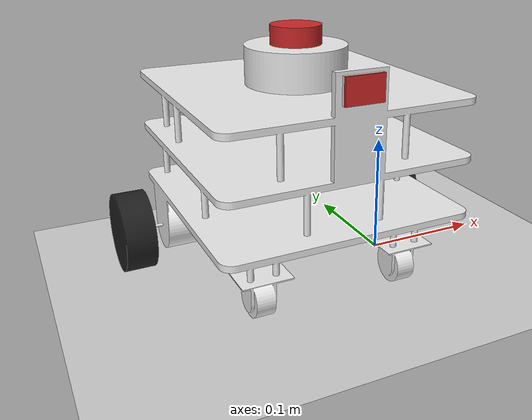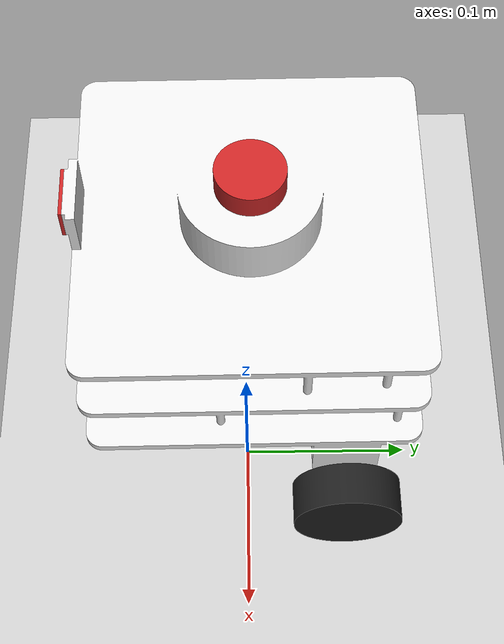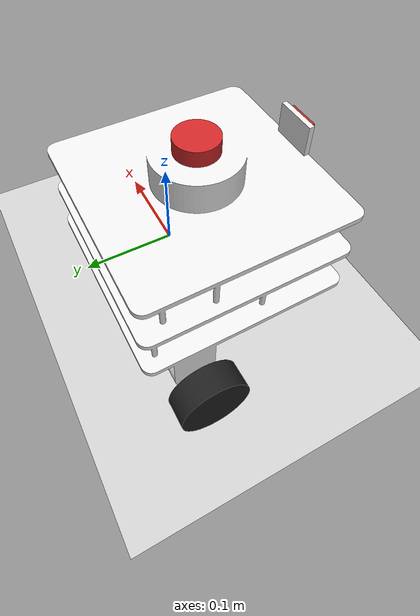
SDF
<sdf version="1.7">
 <world name="default">
  <light name="sun" type="directional">
   <pose>0 0 10 0 -0 0</pose>
   <diffuse>0.8 0.8 0.8 1</diffuse>
   <specular>0.2 0.2 0.2 1</specular>
   <attenuation>
    <range>1000</range>
    <constant>0.9</constant>
    <linear>0.01</linear>
    <quadratic>0.001</quadratic>
   </attenuation>
   <direction>-0.5 0.1 -0.9</direction>
   <spot><inner_angle>0</inner_angle><outer_angle>0</outer_angle><falloff>0</falloff></spot>
  </light>
  <model name="ground_plane">
   <static>1</static>
   <link name="link">
    <collision name="collision">
     <geometry><plane><normal>0 0 1</normal><size>100 100</size></plane></geometry>
     <surface><friction><ode><mu>100</mu><mu2>50</mu2></ode></friction></surface>
    </collision>
    <visual name="visual">
     <cast_shadows>0</cast_shadows>
     <geometry><plane><normal>0 0 1</normal><size>100 100</size></plane></geometry>
     <material>
      <script><uri>file://media/materials/scripts/gazebo.material</uri><name>Gazebo/Grey</name></script>
     </material>
    </visual>
   </link>
  </model>
  <gravity>0 0 -9.8</gravity>
  <magnetic_field>6e-06 2.3e-05 -4.2e-05</magnetic_field>
  <atmosphere type="adiabatic"/>
  <physics type="ode">
   <max_step_size>0.001</max_step_size>
   <real_time_factor>1</real_time_factor>
   <real_time_update_rate>1000</real_time_update_rate>
  </physics>
  <scene><ambient>0.4 0.4 0.4 1</ambient><background>0.7 0.7 0.7 1</background><shadows>1</shadows></scene>
  <audio><device>default</device></audio>
  <spherical_coordinates>
   <surface_model>EARTH_WGS84</surface_model>
   <latitude_deg>0</latitude_deg>
   <longitude_deg>0</longitude_deg>
   <elevation>0</elevation>
   <heading_deg>0</heading_deg>
  </spherical_coordinates>
  <model name="my_bot">
   <link name="base_footprint">
    <inertial>
     <pose>-0.005983 0 0.105396 0 -0 0</pose>
     <mass>1.07769</mass>
     <inertia>
      <ixx>0.0064204</ixx>
      <ixy>7.30532e-19</ixy>
      <ixz>-0.000660268</ixz>
      <iyy>0.00626222</iyy>
      <iyz>5.33215e-18</iyz>
      <izz>0.00633694</izz>
     </inertia>
    </inertial>
    <collision name="base_footprint_fixed_joint_lump__base_link_collision">
     <geometry>
      <mesh>
       <scale>0.001 0.001 0.001</scale>
       <uri>file:///home/vedh/workspaces/bbot_ws/install/bbot_description/share/bbot_description/meshes/base_link.stl</uri>
      </mesh>
     </geometry>
     <surface><friction><ode><mu>0.2</mu><mu2>0.2</mu2></ode></friction></surface>
    </collision>
    <collision name="base_footprint_fixed_joint_lump__camera_collision_1">
     <geometry>
      <mesh>
       <scale>0.001 0.001 0.001</scale>
       <uri>file:///home/vedh/workspaces/bbot_ws/install/bbot_description/share/bbot_description/meshes/camera_1.stl</uri>
      </mesh>
     </geometry>
    </collision>
    <collision name="base_footprint_fixed_joint_lump__lidar_collision_2">
     <geometry>
      <mesh>
       <scale>0.001 0.001 0.001</scale>
       <uri>file:///home/vedh/workspaces/bbot_ws/install/bbot_description/share/bbot_description/meshes/lidar_1.stl</uri>
      </mesh>
     </geometry>
    </collision>
    <visual name="base_footprint_fixed_joint_lump__base_link_visual">
     <geometry>
      <mesh>
       <scale>0.001 0.001 0.001</scale>
       <uri>file:///home/vedh/workspaces/bbot_ws/install/bbot_description/share/bbot_description/meshes/base_link.stl</uri>
      </mesh>
     </geometry>
     <material>
      <script><name>Gazebo/White</name><uri>file://media/materials/scripts/gazebo.material</uri></script>
     </material>
    </visual>
    <visual name="base_footprint_fixed_joint_lump__camera_visual_1">
     <geometry>
      <mesh>
       <scale>0.001 0.001 0.001</scale>
       <uri>file:///home/vedh/workspaces/bbot_ws/install/bbot_description/share/bbot_description/meshes/camera_1.stl</uri>
      </mesh>
     </geometry>
     <material>
      <script><name>Gazebo/Red</name><uri>file://media/materials/scripts/gazebo.material</uri></script>
     </material>
    </visual>
    <visual name="base_footprint_fixed_joint_lump__lidar_visual_2">
     <geometry>
      <mesh>
       <scale>0.001 0.001 0.001</scale>
       <uri>file:///home/vedh/workspaces/bbot_ws/install/bbot_description/share/bbot_description/meshes/lidar_1.stl</uri>
      </mesh>
     </geometry>
     <material>
      <script><name>Gazebo/Red</name><uri>file://media/materials/scripts/gazebo.material</uri></script>
     </material>
    </visual>
    <self_collide>1</self_collide>
    <sensor name="camera" type="camera">
     <visualize>1</visualize>
     <update_rate>10</update_rate>
     <camera>
      <horizontal_fov>1.089</horizontal_fov>
      <image><format>R8G8B8</format><width>640</width><height>480</height></image>
      <clip><near>0.05</near><far>8</far></clip>
     </camera>
     <plugin name="camera_controller" filename="libgazebo_ros_camera.so">
      <frame_name>camera_link_optical</frame_name>
     </plugin>
     <pose>0.1025 0 0.175 0 -0 0</pose>
    </sensor>
    <sensor name="laser" type="ray">
     <visualize>1</visualize>
     <update_rate>10</update_rate>
     <ray>
      <scan>
       <horizontal>
        <samples>360</samples>
        <min_angle>-3.14</min_angle>
        <max_angle>3.14</max_angle>
        <resolution>1</resolution>
       </horizontal>
       <vertical><samples>1</samples><min_angle>0</min_angle><max_angle>0</max_angle></vertical>
      </scan>
      <range><min>0.3</min><max>12</max></range>
     </ray>
     <plugin name="laser_controller" filename="libgazebo_ros_ray_sensor.so">
      <ros><argument>~/out:=scan</argument></ros>
      <output_type>sensor_msgs/LaserScan</output_type>
      <frame_name>lidar</frame_name>
     </plugin>
     <pose>0 0 0.1875 0 -0 0</pose>
    </sensor>
   </link>
   <joint name="base_leftwheel_joint" type="revolute">
    <pose relative_to="base_footprint">-0.055 0.1125 0.0325 0 -0 0</pose>
    <parent>base_footprint</parent>
    <child>leftwheel</child>
    <axis>
     <xyz>0 -1 0</xyz>
     <limit><lower>-1e+16</lower><upper>1e+16</upper></limit>
     <dynamics><spring_reference>0</spring_reference><spring_stiffness>0</spring_stiffness></dynamics>
    </axis>
   </joint>
   <link name="leftwheel">
    <pose relative_to="base_leftwheel_joint">0 0 0 0 -0 0</pose>
    <inertial>
     <pose>-0 0.0125 0 0 -0 0</pose>
     <mass>0.118215</mass>
     <inertia><ixx>3.7e-05</ixx><ixy>0</ixy><ixz>0</ixz><iyy>6.2e-05</iyy><iyz>0</iyz><izz>3.7e-05</izz></inertia>
    </inertial>
    <collision name="leftwheel_collision">
     <pose>0.055 -0.1125 -0.0325 0 -0 0</pose>
     <geometry>
      <mesh>
       <scale>0.001 0.001 0.001</scale>
       <uri>file:///home/vedh/workspaces/bbot_ws/install/bbot_description/share/bbot_description/meshes/leftwheel_1.stl</uri>
      </mesh>
     </geometry>
     <surface><friction><ode><mu>0.2</mu><mu2>0.2</mu2></ode></friction></surface>
    </collision>
    <visual name="leftwheel_visual">
     <pose>0.055 -0.1125 -0.0325 0 -0 0</pose>
     <geometry>
      <mesh>
       <scale>0.001 0.001 0.001</scale>
       <uri>file:///home/vedh/workspaces/bbot_ws/install/bbot_description/share/bbot_description/meshes/leftwheel_1.stl</uri>
      </mesh>
     </geometry>
     <material>
      <script><name>Gazebo/Black</name><uri>file://media/materials/scripts/gazebo.material</uri></script>
     </material>
    </visual>
    <self_collide>1</self_collide>
   </link>
   <joint name="base_rightwheel_joint" type="revolute">
    <pose relative_to="base_footprint">-0.055 -0.1125 0.0325 0 -0 0</pose>
    <parent>base_footprint</parent>
    <child>rigthwheel</child>
    <axis>
     <xyz>0 -1 0</xyz>
     <limit><lower>-1e+16</lower><upper>1e+16</upper></limit>
     <dynamics><spring_reference>0</spring_reference><spring_stiffness>0</spring_stiffness></dynamics>
    </axis>
   </joint>
   <link name="rigthwheel">
    <pose relative_to="base_rightwheel_joint">0 0 0 0 -0 0</pose>
    <inertial>
     <pose>-0 -0.0125 0 0 -0 0</pose>
     <mass>0.118215</mass>
     <inertia><ixx>3.7e-05</ixx><ixy>0</ixy><ixz>0</ixz><iyy>6.2e-05</iyy><iyz>0</iyz><izz>3.7e-05</izz></inertia>
    </inertial>
    <collision name="rigthwheel_collision">
     <pose>0.055 0.1125 -0.0325 0 -0 0</pose>
     <geometry>
      <mesh>
       <scale>0.001 0.001 0.001</scale>
       <uri>file:///home/vedh/workspaces/bbot_ws/install/bbot_description/share/bbot_description/meshes/rigthwheel_1.stl</uri>
      </mesh>
     </geometry>
     <surface><friction><ode><mu>0.2</mu><mu2>0.2</mu2></ode></friction></surface>
    </collision>
    <visual name="rigthwheel_visual">
     <pose>0.055 0.1125 -0.0325 0 -0 0</pose>
     <geometry>
      <mesh>
       <scale>0.001 0.001 0.001</scale>
       <uri>file:///home/vedh/workspaces/bbot_ws/install/bbot_description/share/bbot_description/meshes/rigthwheel_1.stl</uri>
      </mesh>
     </geometry>
     <material>
      <script><name>Gazebo/Black</name><uri>file://media/materials/scripts/gazebo.material</uri></script>
     </material>
    </visual>
    <self_collide>1</self_collide>
   </link>
   <static>0</static>
   <plugin name="gazebo_ros2_control" filename="libgazebo_ros2_control.so">
    <parameters>/home/vedh/workspaces/bbot_ws/install/bbot_description/share/bbot_description/config/bbot_controllers.yaml</parameters>
   </plugin>
   <pose>-0.075736 0.00375 -3e-06 -3.2e-05 -9e-05 0.008971</pose>
  </model>
 </world>
</sdf>
